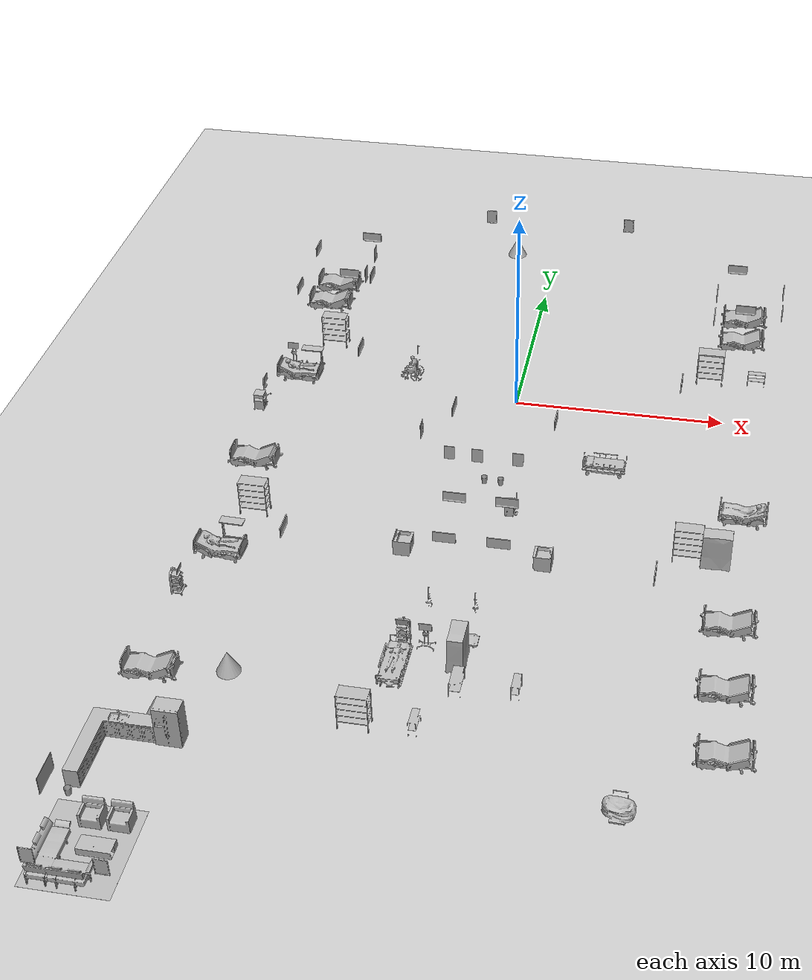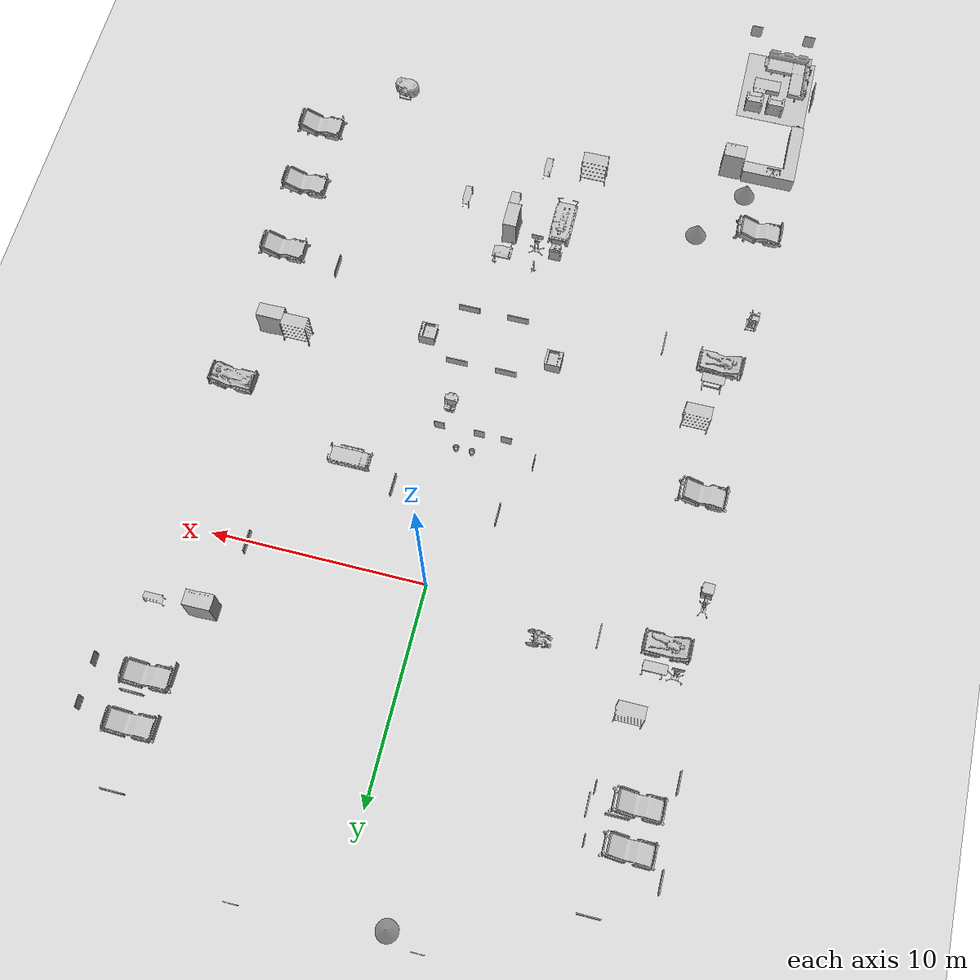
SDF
<sdf version="1.8">
 <world name="hospital_original">
  <gravity>0 0 -9.8</gravity>
  <physics name="default_physics" type="ode">
   <max_step_size>0.001</max_step_size>
   <real_time_factor>1</real_time_factor>
  </physics>
  <scene><ambient>0.6 0.6 0.6 1</ambient><background>0.4 0.4 0.4 1</background><shadows>false</shadows></scene>
  <plugin filename="gz-sim-physics-system" name="gz::sim::systems::Physics"/>
  <plugin filename="gz-sim-user-commands-system" name="gz::sim::systems::UserCommands"/>
  <plugin filename="gz-sim-scene-broadcaster-system" name="gz::sim::systems::SceneBroadcaster"/>
  <plugin filename="gz-sim-sensors-system" name="gz::sim::systems::Sensors">
   <render_engine>ogre2</render_engine>
  </plugin>
  <plugin filename="gz-sim-imu-system" name="gz::sim::systems::Imu"/>
  <plugin filename="gz-sim-contact-system" name="gz::sim::systems::Contact"/>
  <light type="directional" name="sun">
   <pose>0 0 10 0 0 0</pose>
   <diffuse>0.8 0.8 0.8 1</diffuse>
   <specular>0.2 0.2 0.2 1</specular>
   <attenuation>
    <range>1000</range>
    <constant>0.9</constant>
    <linear>0.01</linear>
    <quadratic>0.001</quadratic>
   </attenuation>
   <direction>-0.5 0.1 -0.9</direction>
  </light>
  <model name="ground_plane">
   <static>true</static>
   <link name="link">
    <collision name="collision">
     <geometry><plane><normal>0 0 1</normal><size>100 100</size></plane></geometry>
    </collision>
    <visual name="visual">
     <geometry><plane><normal>0 0 1</normal><size>100 100</size></plane></geometry>
     <material><ambient>0.8 0.8 0.8 1</ambient><diffuse>0.8 0.8 0.8 1</diffuse></material>
    </visual>
   </link>
  </model>
  <include>
   <uri>model://CGMClassic</uri>
   <static>true</static>
   <name>CGMClassic_1</name>
   <pose>11.1777 -18.4129 0 0 0 -3.13719</pose>
  </include>
  <include>
   <uri>model://StorageRack</uri>
   <static>true</static>
   <name>StorageRack_1</name>
   <pose>9.07005 -10.3582 0 0 0 0</pose>
  </include>
  <include>
   <uri>model://CGMClassic</uri>
   <static>true</static>
   <name>CGMClassic_2</name>
   <pose>11.1179 -14.6493 0 0 0 -3.13599</pose>
  </include>
  <include>
   <uri>model://PatientWheelChair</uri>
   <static>true</static>
   <name>PatientWheelChair_1</name>
   <pose>-5.46091 1.23577 0 0 0 -1.54828</pose>
  </include>
  <include>
   <uri>model://TrolleyBed</uri>
   <static>true</static>
   <name>TrolleyBed_1</name>
   <pose>4.85934 -4.87229 0 0 0 0</pose>
  </include>
  <include>
   <uri>model://SurgicalTrolley</uri>
   <static>true</static>
   <name>SurgicalTrolley_1</name>
   <pose>11.4301 3.56328 0 0 -0 0</pose>
  </include>
  <include>
   <uri>model://CGMClassic</uri>
   <static>true</static>
   <name>CGMClassic_3</name>
   <pose>-11.2304 -21.1134 0 0 0 -3.11834</pose>
  </include>
  <include>
   <uri>model://aws_robomaker_residential_CoffeeTable_01</uri>
   <static>true</static>
   <name>aws_robomaker_residential_CoffeeTable_01_1</name>
   <pose>-10.2383 -29.9144 0 0 -0 0</pose>
  </include>
  <include>
   <uri>model://aws_robomaker_residential_Sofa_01</uri>
   <static>true</static>
   <name>aws_robomaker_residential_Sofa_01_1</name>
   <pose>-11.077 -30.5544 -1e-05 2.6e-05 -3e-06 1.56984</pose>
  </include>
  <include>
   <uri>model://aws_robomaker_residential_TV_02</uri>
   <static>true</static>
   <name>aws_robomaker_residential_TV_02_1</name>
   <pose>-12.4122 -28.4594 1.53211 0 -0 3.13999</pose>
  </include>
  <include>
   <uri>model://aws_robomaker_residential_KitchenCabinet_01</uri>
   <static>true</static>
   <name>aws_robomaker_residential_KitchenCabinet_01_1</name>
   <pose>-11.1379 -25.6941 0 0 -0 0</pose>
  </include>
  <include>
   <uri>model://aws_robomaker_residential_Refrigerator_01</uri>
   <static>true</static>
   <name>aws_robomaker_residential_Refrigerator_01_1</name>
   <pose>-9.28238 -24.5015 0 0 -0 0</pose>
  </include>
  <include>
   <uri>model://aws_robomaker_residential_SofaB_01</uri>
   <static>true</static>
   <name>aws_robomaker_residential_SofaB_01_1</name>
   <pose>-10.8238 -28.6662 -5e-06 -1.3e-05 -2e-06 -1.56116</pose>
  </include>
  <include>
   <uri>model://aws_robomaker_residential_SofaB_01</uri>
   <static>true</static>
   <name>aws_robomaker_residential_SofaB_01_2</name>
   <pose>-9.73697 -28.6538 -3e-06 1.3e-05 -4e-06 -1.56077</pose>
  </include>
  <include>
   <uri>model://aws_robomaker_residential_PortraitA_01</uri>
   <static>true</static>
   <name>aws_robomaker_residential_PortraitA_01_1</name>
   <pose>1.14738 -6.92303 1.41115 0 -0 0</pose>
  </include>
  <include>
   <uri>model://aws_robomaker_residential_PortraitD_02</uri>
   <static>true</static>
   <name>aws_robomaker_residential_PortraitD_02_1</name>
   <pose>2.40772 -3.61975 1.54508 0 0 -1.57619</pose>
  </include>
  <include>
   <uri>model://MopCart3</uri>
   <static>true</static>
   <name>MopCart3_1</name>
   <pose>1.07736 -8.59036 -6.7e-05 0 1e-06 0</pose>
  </include>
  <include>
   <uri>model://aws_robomaker_residential_PortraitA_01</uri>
   <static>true</static>
   <name>aws_robomaker_residential_PortraitA_01_2</name>
   <pose>-0.706092 -6.93108 1.41115 0 -0 0</pose>
  </include>
  <include>
   <uri>model://aws_robomaker_residential_PortraitA_01</uri>
   <static>true</static>
   <name>aws_robomaker_residential_PortraitA_01_3</name>
   <pose>-1.97245 -6.9216 1.41115 0 -0 0</pose>
  </include>
  <include>
   <uri>model://aws_robomaker_residential_PortraitD_02</uri>
   <static>true</static>
   <name>aws_robomaker_residential_PortraitD_02_2</name>
   <pose>-2.43341 -3.38621 1.54508 0 -0 1.57083</pose>
  </include>
  <include>
   <uri>model://ElderLadyPatient</uri>
   <static>true</static>
   <name>ElderLadyPatient_1</name>
   <pose>-10.9972 0.231354 0.001654 0 -0 0</pose>
  </include>
  <include>
   <uri>model://ElderLadyPatient</uri>
   <static>true</static>
   <name>ElderLadyPatient_2</name>
   <pose>-10.8133 -13.5925 0.001657 0 -2e-06 -0.025052</pose>
  </include>
  <include>
   <uri>model://CGMClassic</uri>
   <static>true</static>
   <name>CGMClassic_4</name>
   <pose>-11.0878 -7.00992 0 0 -0 3.1351</pose>
  </include>
  <include>
   <uri>model://aws_robomaker_residential_Trash_01</uri>
   <static>true</static>
   <name>aws_robomaker_residential_Trash_01_1</name>
   <pose>0.316178 -6.58235 0.000903 0 -2e-06 0</pose>
  </include>
  <include>
   <uri>model://aws_robomaker_residential_Trash_01</uri>
   <static>true</static>
   <name>aws_robomaker_residential_Trash_01_2</name>
   <pose>-0.436645 -6.57758 0.000903 -1e-06 -1e-06 0</pose>
  </include>
  <include>
   <uri>model://aws_robomaker_residential_Trash_01</uri>
   <static>true</static>
   <name>aws_robomaker_residential_Trash_01_3</name>
   <pose>-12.1773 -27.6293 0.000894 -1e-06 -1e-06 0</pose>
  </include>
  <include>
   <uri>model://aws_robomaker_residential_PortraitE_01</uri>
   <static>true</static>
   <name>aws_robomaker_residential_PortraitE_01_1</name>
   <pose>-9.06141 -31.9238 1.38136 0 -0 0</pose>
  </include>
  <include>
   <uri>model://aws_robomaker_residential_PortraitE_01</uri>
   <static>true</static>
   <name>aws_robomaker_residential_PortraitE_01_2</name>
   <pose>-11.7398 -31.9011 1.38136 0 -0 0</pose>
  </include>
  <include>
   <uri>model://InstrumentCart1</uri>
   <static>true</static>
   <name>InstrumentCart1_1</name>
   <pose>-11.8071 -16.1825 0 0 -0 1.56702</pose>
  </include>
  <include>
   <uri>model://InstrumentCart2</uri>
   <static>true</static>
   <name>InstrumentCart2_1</name>
   <pose>-12.0906 -1.87329 0.051875 0 -0 1.57773</pose>
  </include>
  <include>
   <uri>model://InstrumentCart2</uri>
   <static>true</static>
   <name>InstrumentCart2_2</name>
   <pose>-11.5231 1.34237 0 0 -0 0</pose>
  </include>
  <include>
   <uri>model://aws_robomaker_residential_Carpet_01</uri>
   <static>true</static>
   <name>aws_robomaker_residential_Carpet_01_1</name>
   <pose>-10.7338 -29.9243 0 0 -0 0</pose>
  </include>
  <include>
   <uri>model://CGMClassic</uri>
   <static>true</static>
   <name>CGMClassic_5</name>
   <pose>-11.0106 8.9505 -0.008203 -0.035019 -0.000392 3.13388</pose>
  </include>
  <include>
   <uri>model://CGMClassic</uri>
   <static>true</static>
   <name>CGMClassic_6</name>
   <pose>-11.025 7.10335 0 -0.035021 1.8e-05 -3.13762</pose>
  </include>
  <include>
   <uri>model://BedTable</uri>
   <static>true</static>
   <name>BedTable_1</name>
   <pose>-10.4759 1.39442 0.001184 0 -3e-06 0</pose>
  </include>
  <include>
   <uri>model://BedTable</uri>
   <static>true</static>
   <name>BedTable_2</name>
   <pose>-10.5874 -12.5084 0.001189 0 -0 3.11588</pose>
  </include>
  <include>
   <uri>model://BedsideTable</uri>
   <static>true</static>
   <name>BedsideTable_1</name>
   <pose>-12.1499 -2.63111 0.00018 1e-06 -0 -0.00878</pose>
  </include>
  <include>
   <uri>model://TrolleyBedPatient</uri>
   <static>true</static>
   <name>TrolleyBedPatient_1</name>
   <pose>-1.83202 -19.2612 0 0 -0 0</pose>
  </include>
  <include>
   <uri>model://Shower</uri>
   <static>true</static>
   <name>Shower_1</name>
   <pose>-1.07422 -16.1332 0 0 -0 0</pose>
  </include>
  <include>
   <uri>model://Shower</uri>
   <static>true</static>
   <name>Shower_2</name>
   <pose>0.853327 -16.1492 0 0 -0 0</pose>
  </include>
  <include>
   <uri>model://SurgicalTrolley</uri>
   <static>true</static>
   <name>SurgicalTrolley_2</name>
   <pose>-0.411421 -22.2085 0 0 0 -1.58175</pose>
  </include>
  <include>
   <uri>model://SurgicalTrolley</uri>
   <static>true</static>
   <name>SurgicalTrolley_3</name>
   <pose>3.11747 -19.6565 0 0 -0 1.57031</pose>
  </include>
  <include>
   <uri>model://SurgicalTrolleyMed</uri>
   <static>true</static>
   <name>SurgicalTrolleyMed_1</name>
   <pose>0.770804 -19.7749 0 0 0 -1.56798</pose>
  </include>
  <include>
   <uri>model://InstrumentCart1</uri>
   <static>true</static>
   <name>InstrumentCart1_2</name>
   <pose>-11.8071 -16.1825 0 0 -0 1.56702</pose>
  </include>
  <include>
   <uri>model://InstrumentCart2</uri>
   <static>true</static>
   <name>InstrumentCart2_3</name>
   <pose>-0.869537 -17.7436 0 0 0 -0.002595</pose>
  </include>
  <include>
   <uri>model://StorageRackCovered</uri>
   <static>true</static>
   <name>StorageRackCovered_1</name>
   <pose>0.546476 -18.3985 -0 0 -0 1.56584</pose>
  </include>
  <include>
   <uri>model://StorageRack</uri>
   <static>true</static>
   <name>StorageRack_2</name>
   <pose>-2.69866 -22.4178 -8e-06 0 4e-06 0</pose>
  </include>
  <include>
   <uri>model://KitchenSink</uri>
   <static>true</static>
   <name>KitchenSink_1</name>
   <pose>3.06236 -11.8809 -0.001614 0 -0 3.1391</pose>
  </include>
  <include>
   <uri>model://KitchenSink</uri>
   <static>true</static>
   <name>KitchenSink_2</name>
   <pose>-3.09305 -11.8988 -0.001609 0 -0 0</pose>
  </include>
  <include>
   <uri>model://aws_robomaker_residential_PortraitD_01</uri>
   <static>true</static>
   <name>aws_robomaker_residential_PortraitD_01_1</name>
   <pose>-1.14723 -10.143 1.57344 0 -0 0</pose>
  </include>
  <include>
   <uri>model://aws_robomaker_residential_PortraitD_01</uri>
   <static>true</static>
   <name>aws_robomaker_residential_PortraitD_01_2</name>
   <pose>1.16956 -10.1327 1.57344 0 -0 0</pose>
  </include>
  <include>
   <uri>model://aws_robomaker_residential_PortraitD_01</uri>
   <static>true</static>
   <name>aws_robomaker_residential_PortraitD_01_3</name>
   <pose>1.2703 -12.9084 1.57344 0 0 -3.14134</pose>
  </include>
  <include>
   <uri>model://aws_robomaker_residential_PortraitD_01</uri>
   <static>true</static>
   <name>aws_robomaker_residential_PortraitD_01_4</name>
   <pose>-1.06108 -12.9155 1.57344 0 0 -3.14134</pose>
  </include>
  <include>
   <uri>model://aws_robomaker_residential_PortraitD_02</uri>
   <static>true</static>
   <name>aws_robomaker_residential_PortraitD_02_3</name>
   <pose>7.89294 -13.6155 1.54508 0 0 -1.57619</pose>
  </include>
  <include>
   <uri>model://aws_robomaker_residential_PortraitD_02</uri>
   <static>true</static>
   <name>aws_robomaker_residential_PortraitD_02_4</name>
   <pose>7.88791 0.445446 1.54508 0 0 -1.57619</pose>
  </include>
  <include>
   <uri>model://aws_robomaker_residential_PortraitD_02</uri>
   <static>true</static>
   <name>aws_robomaker_residential_PortraitD_02_5</name>
   <pose>-7.92095 0.84255 1.54508 0 -0 1.57083</pose>
  </include>
  <include>
   <uri>model://aws_robomaker_residential_PortraitD_02</uri>
   <static>true</static>
   <name>aws_robomaker_residential_PortraitD_02_6</name>
   <pose>-7.90937 -13.3417 1.54508 0 -0 1.57083</pose>
  </include>
  <include>
   <uri>model://aws_robomaker_residential_PortraitD_02</uri>
   <static>true</static>
   <name>aws_robomaker_residential_PortraitD_02_7</name>
   <pose>-12.3841 6.01232 1.54508 0 -0 1.57083</pose>
  </include>
  <include>
   <uri>model://aws_robomaker_residential_PortraitD_02</uri>
   <static>true</static>
   <name>aws_robomaker_residential_PortraitD_02_8</name>
   <pose>-12.4276 9.98828 1.54508 0 -0 1.57083</pose>
  </include>
  <include>
   <uri>model://aws_robomaker_residential_PortraitE_02</uri>
   <static>true</static>
   <name>aws_robomaker_residential_PortraitE_02_1</name>
   <pose>-9.08927 9.19494 1.84129 0 0 -1.5625</pose>
  </include>
  <include>
   <uri>model://aws_robomaker_residential_PortraitD_02</uri>
   <static>true</static>
   <name>aws_robomaker_residential_PortraitD_02_9</name>
   <pose>-8.94468 7.73571 1.54508 0 -0 1.57083</pose>
  </include>
  <include>
   <uri>model://aws_robomaker_residential_PortraitE_02</uri>
   <static>true</static>
   <name>aws_robomaker_residential_PortraitE_02_2</name>
   <pose>-9.08305 7.04089 1.84129 0 0 -1.5625</pose>
  </include>
  <include>
   <uri>model://aws_robomaker_residential_PortraitD_01</uri>
   <static>true</static>
   <name>aws_robomaker_residential_PortraitD_01_5</name>
   <pose>-9.9148 11.9172 1.40573 0 -0 0</pose>
  </include>
  <include>
   <uri>model://aws_robomaker_residential_PortraitD_01</uri>
   <static>true</static>
   <name>aws_robomaker_residential_PortraitD_01_6</name>
   <pose>-10.2134 7.89752 1.40573 0 -0 0</pose>
  </include>
  <include>
   <uri>model://CGMClassic</uri>
   <static>true</static>
   <name>CGMClassic_7</name>
   <pose>10.6166 9.06291 -0.008203 -0.03501 0.000885 -3.11285</pose>
  </include>
  <include>
   <uri>model://CGMClassic</uri>
   <static>true</static>
   <name>CGMClassic_8</name>
   <pose>10.6006 6.90956 -0.008203 -0.035003 0.001133 -3.10576</pose>
  </include>
  <include>
   <uri>model://aws_robomaker_residential_PortraitD_02</uri>
   <static>true</static>
   <name>aws_robomaker_residential_PortraitD_02_10</name>
   <pose>9.06517 6.78742 1.54508 0 -0 1.57083</pose>
  </include>
  <include>
   <uri>model://aws_robomaker_residential_PortraitD_02</uri>
   <static>true</static>
   <name>aws_robomaker_residential_PortraitD_02_11</name>
   <pose>9.06517 9.05858 1.54508 0 -0 1.57083</pose>
  </include>
  <include>
   <uri>model://aws_robomaker_residential_PortraitE_02</uri>
   <static>true</static>
   <name>aws_robomaker_residential_PortraitE_02_3</name>
   <pose>12.3972 6.98849 1.84129 0 0 -1.5625</pose>
  </include>
  <include>
   <uri>model://aws_robomaker_residential_PortraitE_02</uri>
   <static>true</static>
   <name>aws_robomaker_residential_PortraitE_02_4</name>
   <pose>12.3972 8.87466 1.84129 0 0 -1.5625</pose>
  </include>
  <include>
   <uri>model://aws_robomaker_residential_PortraitE_02</uri>
   <static>true</static>
   <name>aws_robomaker_residential_PortraitE_02_5</name>
   <pose>-3.4385 -6.00525 1.84129 0 -0 1.56777</pose>
  </include>
  <include>
   <uri>model://aws_robomaker_residential_PortraitD_01</uri>
   <static>true</static>
   <name>aws_robomaker_residential_PortraitD_01_7</name>
   <pose>10.596 7.88308 1.40573 0 -0 0</pose>
  </include>
  <include>
   <uri>model://aws_robomaker_residential_PortraitD_01</uri>
   <static>true</static>
   <name>aws_robomaker_residential_PortraitD_01_8</name>
   <pose>9.98896 11.914 1.40573 0 -0 0</pose>
  </include>
  <include>
   <uri>model://ParkingTrolleyMin</uri>
   <static>true</static>
   <name>ParkingTrolleyMin_1</name>
   <pose>0.715846 -17.1496 -0.000121 -1e-06 -0 0</pose>
  </include>
  <include>
   <uri>model://MalePatientBed</uri>
   <static>true</static>
   <name>MalePatientBed_1</name>
   <pose>11.3771 -7.38891 0.001658 -1e-06 1e-06 3.11598</pose>
  </include>
  <include>
   <uri>model://CGMClassic</uri>
   <static>true</static>
   <name>CGMClassic_9</name>
   <pose>11.3613 -21.8867 0 0 0 -3.12292</pose>
  </include>
  <include>
   <uri>model://StorageRackCoverOpen</uri>
   <static>true</static>
   <name>StorageRackCoverOpen_1</name>
   <pose>9.15016 3.44263 -9e-06 1e-06 2e-06 0</pose>
  </include>
  <include>
   <uri>model://StorageRack</uri>
   <static>true</static>
   <name>StorageRack_3</name>
   <pose>-10.1178 -10.4694 -0 0 -0 0</pose>
  </include>
  <include>
   <uri>model://StorageRack</uri>
   <static>true</static>
   <name>StorageRack_4</name>
   <pose>-9.91557 3.5644 -9e-06 1e-06 1e-06 -0.000273</pose>
  </include>
  <include>
   <uri>model://StorageRackCovered</uri>
   <static>true</static>
   <name>StorageRackCovered_2</name>
   <pose>10.294 -10.577 -7e-06 3e-06 -0 3.13389</pose>
  </include>
  <include>
   <uri>model://InstrumentCart1</uri>
   <static>true</static>
   <name>InstrumentCart1_3</name>
   <pose>-1.83539 -17.5879 0 0 -0 0</pose>
  </include>
  <include>
   <uri>model://ParkingTrolleyMax</uri>
   <static>true</static>
   <name>ParkingTrolleyMax_1</name>
   <pose>7.71054 -25.1326 -0.000121 1e-06 -0 -1.59536</pose>
  </include>
  <include>
   <uri>model://aws_robomaker_residential_PortraitE_02</uri>
   <static>true</static>
   <name>aws_robomaker_residential_PortraitE_02_6</name>
   <pose>-3.74211 14.8725 1.54379 0 -0 0</pose>
  </include>
  <include>
   <uri>model://aws_robomaker_residential_PortraitE_01</uri>
   <static>true</static>
   <name>aws_robomaker_residential_PortraitE_01_3</name>
   <pose>3.85701 14.8779 1.69742 0 -0 0</pose>
  </include>
  <model name="goal_cone_01">
   <pose>-10.243 -23.225 0.5 5.254459108606895e-17 -7.713284103729037e-10 -1.7344</pose>
   <static>false</static>
   <link name="goal_cone_link">
    <inertial>
     <mass>1.0</mass>
     <inertia><ixx>0.075</ixx><ixy>0</ixy><ixz>0</ixz><iyy>0.075</iyy><iyz>0</iyz><izz>0.075</izz></inertia>
    </inertial>
    <collision name="goal_cone_collision">
     <geometry><cone><radius>0.5</radius><length>1.0</length></cone></geometry>
    </collision>
    <visual name="goal_cone_visual">
     <geometry><cone><radius>0.5</radius><length>1.0</length></cone></geometry>
     <material>
      <ambient>0.699999988 0.699999988 0.699999988 1.0</ambient>
      <diffuse>0.699999988 0.699999988 0.699999988 1.0</diffuse>
      <specular>1 1 1 1</specular>
     </material>
    </visual>
   </link>
  </model>
  <model name="goal_cone_02">
   <pose>-8.309 -20.431 0.5 5.254459108606895e-17 -7.713284103729037e-10 0.5003</pose>
   <static>false</static>
   <link name="goal_cone_link">
    <inertial>
     <mass>1.0</mass>
     <inertia><ixx>0.075</ixx><ixy>0</ixy><ixz>0</ixz><iyy>0.075</iyy><iyz>0</iyz><izz>0.075</izz></inertia>
    </inertial>
    <collision name="goal_cone_collision">
     <geometry><cone><radius>0.5</radius><length>1.0</length></cone></geometry>
    </collision>
    <visual name="goal_cone_visual">
     <geometry><cone><radius>0.5</radius><length>1.0</length></cone></geometry>
     <material>
      <ambient>0.699999988 0.699999988 0.699999988 1.0</ambient>
      <diffuse>0.699999988 0.699999988 0.699999988 1.0</diffuse>
      <specular>1 1 1 1</specular>
     </material>
    </visual>
   </link>
  </model>
  <model name="goal_cone_03">
   <pose>-2.211 14.337 0.5 5.254459108606895e-17 -7.713284103729037e-10 -1.8299</pose>
   <static>false</static>
   <link name="goal_cone_link">
    <inertial>
     <mass>1.0</mass>
     <inertia><ixx>0.075</ixx><ixy>0</ixy><ixz>0</ixz><iyy>0.075</iyy><iyz>0</iyz><izz>0.075</izz></inertia>
    </inertial>
    <collision name="goal_cone_collision">
     <geometry><cone><radius>0.5</radius><length>1.0</length></cone></geometry>
    </collision>
    <visual name="goal_cone_visual">
     <geometry><cone><radius>0.5</radius><length>1.0</length></cone></geometry>
     <material>
      <ambient>0.699999988 0.699999988 0.699999988 1.0</ambient>
      <diffuse>0.699999988 0.699999988 0.699999988 1.0</diffuse>
      <specular>1 1 1 1</specular>
     </material>
    </visual>
   </link>
  </model>
 </world>
</sdf>

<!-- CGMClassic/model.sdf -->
<sdf version="1.6">
  <model name="CGMClassic">
   <static>true</static>
    <link name="body">
      <pose>0 0 0 0 0 0</pose>

      <visual name="visual">
        <geometry>
          <mesh>
            <uri>model://CGMClassic/meshes/CGMClassic.obj</uri>
            <scale>0.01 0.01 0.01</scale>
          </mesh>
        </geometry>
      </visual>

      <collision name="collision">
        <geometry>
          <mesh>
            <uri>model://CGMClassic/meshes/CGMClassic.obj</uri>
            <scale>0.01 0.01 0.01</scale>
          </mesh>
        </geometry>
      </collision>

    </link>
  </model>
</sdf>

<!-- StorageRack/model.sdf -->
<sdf version="1.5">
  <model name="StorageRack">
    <link name="link">
      <pose>0 0 0 0 0 0</pose>

        <visual name="visual">
          <geometry>
            <mesh><uri>model://StorageRack/meshes/StorageRack.obj</uri></mesh>
          </geometry>
        </visual>

        <collision name="collision">
          <geometry>
            <mesh><uri>model://StorageRack/meshes/StorageRack.obj</uri></mesh>
          </geometry>
        </collision>

    </link>
  </model>
</sdf>

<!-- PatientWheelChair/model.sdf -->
<sdf version="1.6">
  <model name="PatientWheelChair">
   <static>true</static>
    <link name="body">
      <pose>0 0 0 0 0 0</pose>

      <visual name="visual">
        <geometry>
          <mesh>
            <uri>model://PatientWheelChair/meshes/PatientWheelChair.obj</uri>
          </mesh>
        </geometry>
      </visual>

      <collision name="collision">
        <geometry>
          <mesh>
            <uri>model://PatientWheelChair/meshes/PatientWheelChair_Col.obj</uri>
          </mesh>
        </geometry>
      </collision>

    </link>
  </model>
</sdf>

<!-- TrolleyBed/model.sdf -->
<sdf version="1.5">
  <model name="TrolleyBed">
    <link name="link">
      <pose>0 0 0 0 0 0</pose>

        <visual name="visual">
          <geometry>
            <mesh><uri>model://TrolleyBed/meshes/TrolleyBed.obj</uri></mesh>
          </geometry>
        </visual>

        <collision name="collision">
          <geometry>
            <mesh><uri>model://TrolleyBed/meshes/TrolleyBed.obj</uri></mesh>
          </geometry>
        </collision>

    </link>
  </model>
</sdf>

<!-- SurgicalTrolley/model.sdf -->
<sdf version="1.6">
  <model name='SurgicalTrolley'>
   <static>true</static>
    <link name="body">
      <pose>0 0 0 0 0 0</pose>

      <visual name="visual">
        <geometry>
          <mesh>
            <uri>model://SurgicalTrolley/meshes/trolley.obj</uri>
          </mesh>
        </geometry>
      </visual>

      <collision name="collision">
        <geometry>
          <mesh>
            <uri>model://SurgicalTrolley/meshes/trolley.obj</uri>
          </mesh>
        </geometry>
      </collision>

    </link>
  </model>
</sdf>

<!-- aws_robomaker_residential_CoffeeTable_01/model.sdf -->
<sdf version="1.6">
  <model name="aws_robomaker_residential_CoffeeTable_01">
    <link name="link">
      <inertial>
        <mass>21.7</mass>

        <inertia>
          <ixx>0.8137499999999998</ixx>
          <ixy>0</ixy>
          <ixz>0</ixz>
          <iyy>2.76675</iyy>
          <iyz>0</iyz>
          <izz>3.254</izz>
        </inertia>

      </inertial>

      <collision name="collision">
        <geometry>
          <mesh>
            <uri>model://aws_robomaker_residential_CoffeeTable_01/meshes/aws_CoffeeTable_01_collision.DAE</uri>
            <scale>1 1 1</scale>
          </mesh>
        </geometry>

        <surface>
          <contact>
            <ode>
              <max_vel>0.01</max_vel>
            </ode>
          </contact>
         </surface>
      </collision>

      <visual name="visual">
	    <geometry>
          <mesh>
            <uri>model://aws_robomaker_residential_CoffeeTable_01/meshes/aws_CoffeeTable_01_visual.DAE</uri>
          </mesh>
        </geometry>
      <meta> <layer> 1 </layer></meta>
</visual>
    </link>
    <static>1</static>
  </model>
</sdf>

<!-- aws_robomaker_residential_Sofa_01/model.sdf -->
<sdf version="1.6">
  <model name="aws_robomaker_residential_Sofa_01">
    <link name="link">

      <inertial>
        <mass>72.5</mass>
      </inertial>

      <collision name="collision">

        <geometry>
          <mesh>
            <uri>model://aws_robomaker_residential_Sofa_01/meshes/aws_Sofa_01_collision.DAE</uri>
            <scale>1 1 1</scale>
          </mesh>
        </geometry>

      </collision>
      <visual name="visual">
	    <geometry>
          <mesh>
            <uri>model://aws_robomaker_residential_Sofa_01/meshes/aws_Sofa_01_visual.DAE</uri>
          </mesh>
        </geometry>
      <meta> <layer> 1 </layer></meta>
</visual>
    </link>
  </model>
</sdf>

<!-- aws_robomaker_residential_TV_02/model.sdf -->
<sdf version="1.6">
  <model name="aws_robomaker_residential_TV_02">
    <link name="link">
      <inertial>
        <mass>1</mass>
      </inertial>
      <collision name="collision">
        <geometry>
          <mesh>
            <uri>model://aws_robomaker_residential_TV_02/meshes/aws_TV_01_collision.DAE</uri>
            <scale>1 1 1</scale>
          </mesh>
        </geometry>
      </collision>
      <visual name="visual">
	    <geometry>
          <mesh>
            <uri>model://aws_robomaker_residential_TV_02/meshes/aws_TV_01_visual.DAE</uri>
          </mesh>
        </geometry>
      <meta> <layer> 2 </layer></meta>
</visual>
    </link>
	<static>1</static>
  </model>
</sdf>

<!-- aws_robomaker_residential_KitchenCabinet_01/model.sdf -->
<sdf version="1.6">
  <model name="aws_robomaker_residential_KitchenCabinet_01">
    <link name="link">
      <inertial>
        <mass>1</mass>
      </inertial>
      <collision name="collision">
        <laser_retro>0</laser_retro>
        <max_contacts>10</max_contacts>
        <geometry>
          <mesh>
            <uri>model://aws_robomaker_residential_KitchenCabinet_01/meshes/aws_KitchenCabinet_01_collision.DAE</uri>
            <scale>1 1 1</scale>
          </mesh>
        </geometry>
      </collision>
      <visual name="visual">
	    <geometry>
          <mesh>
            <uri>model://aws_robomaker_residential_KitchenCabinet_01/meshes/aws_KitchenCabinet_01_visual.DAE</uri>
          </mesh>
        </geometry>
      <meta> <layer> 1 </layer></meta>
</visual>
    </link>

    <static>1</static>
  </model>
</sdf>

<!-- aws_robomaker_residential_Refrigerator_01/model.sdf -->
<sdf version="1.6">
  <model name="aws_robomaker_residential_Refrigerator_01">
    <link name="link">
      <inertial>
        <mass>1</mass>
      </inertial>
      <collision name="collision">
        <geometry>
          <mesh>
            <uri>model://aws_robomaker_residential_Refrigerator_01/meshes/aws_Refrigerator_01_collision.DAE</uri>
            <scale>1 1 1</scale>
          </mesh>
        </geometry>
      </collision>
      <visual name="visual">
	    <geometry>
          <mesh>
            <uri>model://aws_robomaker_residential_Refrigerator_01/meshes/aws_Refrigerator_01_visual.DAE</uri>
          </mesh>
        </geometry>
      <meta> <layer> 1 </layer></meta>
</visual>
    </link>
    <static>1</static>
  </model>
</sdf>

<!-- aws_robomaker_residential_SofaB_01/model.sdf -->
<sdf version="1.6">
  <model name="aws_robomaker_residential_SofaB_01">
    <link name="link">

      <inertial>
        <mass>72.5</mass>
      </inertial>

      <collision name="collision">

        <geometry>
          <mesh>
            <uri>model://aws_robomaker_residential_SofaB_01/meshes/aws_SofaB_01_collision.DAE</uri>
            <scale>1 1 1</scale>
          </mesh>
        </geometry>

      </collision>
      <visual name="visual">
	    <geometry>
          <mesh>
            <uri>model://aws_robomaker_residential_SofaB_01/meshes/aws_SofaB_01_visual.DAE</uri>
          </mesh>
        </geometry>
      <meta> <layer> 1 </layer></meta>
</visual>
    </link>
  </model>
</sdf>

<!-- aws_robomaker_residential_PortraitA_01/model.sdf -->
<sdf version="1.6">
  <model name="aws_robomaker_residential_PortraitA_01">
    <link name="link">
      <inertial>
        <mass>1</mass>
      </inertial>
      <collision name="collision">
        <geometry>
          <mesh>
            <uri>model://aws_robomaker_residential_PortraitA_01/meshes/aws_PortraitA_01_collision.DAE</uri>
            <scale>1 1 1</scale>
          </mesh>
        </geometry>
      </collision>
      <visual name="visual">
	    <geometry>
          <mesh>
            <uri>model://aws_robomaker_residential_PortraitA_01/meshes/aws_PortraitA_01_visual.DAE</uri>
          </mesh>
        </geometry>
      <meta> <layer> 2 </layer></meta>
</visual>
    </link>
	<static>1</static>
  </model>
</sdf>

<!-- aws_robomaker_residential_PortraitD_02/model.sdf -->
<sdf version="1.6">
  <model name="aws_robomaker_residential_PortraitD_02">
    <link name="link">

      <inertial>
        <mass>1.5</mass>
      </inertial>

      <collision name="collision">
        <geometry>
          <mesh>
            <uri>model://aws_robomaker_residential_PortraitD_02/meshes/aws_PortraitD_01_collision.DAE</uri>
            <scale>1 1 1</scale>
          </mesh>
        </geometry>

      </collision>

      <visual name="visual">
	    <geometry>
          <mesh>
            <uri>model://aws_robomaker_residential_PortraitD_02/meshes/aws_PortraitD_01_visual.DAE</uri>
          </mesh>
        </geometry>
      <meta> <layer> 2 </layer></meta>
</visual>
    </link>
	<static>1</static>
  </model>
</sdf>

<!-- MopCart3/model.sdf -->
<sdf version="1.5">
  <model name="MopCart3">
    <link name="link">
      <pose>0 0 0 0 0 0</pose>

        <visual name="visual">
          <geometry>
            <mesh><uri>model://MopCart3/meshes/MopCart3.obj</uri></mesh>
          </geometry>
        </visual>

        <collision name="collision">
          <geometry>
            <mesh><uri>model://MopCart3/meshes/MopCart3.obj</uri></mesh>
          </geometry>
        </collision>

    </link>
  </model>
</sdf>

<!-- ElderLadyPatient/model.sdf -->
<sdf version="1.6">
  <model name='ElderLadyPatient'>
    <link name="body">
      <pose>0 0 0 0 0 0</pose>

      <visual name="visual">
        <geometry>
          <mesh>
            <uri>model://ElderLadyPatient/meshes/ElderFemale.obj</uri>
          </mesh>
        </geometry>
      </visual>

      <collision name="collision">
        <geometry>
          <mesh>
            <uri>model://ElderLadyPatient/meshes/ElderFemale.obj</uri>
          </mesh>
        </geometry>
      </collision>

    </link>
  </model>
</sdf>

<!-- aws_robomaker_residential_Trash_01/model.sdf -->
<sdf version="1.6">
  <model name="aws_robomaker_residential_Trash_01">
    <link name="link">

      <inertial>

        <mass>0.1</mass>
        <inertia>
            <ixy>0</ixy>
            <ixz>0</ixz>
            <iyz>0</iyz>
            <ixx>0.05288</ixx>
            <iyy>0.05288</iyy>
            <izz>0.09132</izz>
          </inertia>
      </inertial>

      <collision name="collision">
        <geometry>
          <mesh>
            <uri>model://aws_robomaker_residential_Trash_01/meshes/aws_Trash_01_collision.DAE</uri>
            <scale>1 1 1</scale>
          </mesh>
        </geometry>

      </collision>

      <visual name="visual">
	    <geometry>
          <mesh>
            <uri>model://aws_robomaker_residential_Trash_01/meshes/aws_Trash_01_visual.DAE</uri>
          </mesh>
        </geometry>
      <meta> <layer> 1 </layer></meta>
</visual>
    </link>
  </model>
</sdf>

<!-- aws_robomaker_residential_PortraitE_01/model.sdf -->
<sdf version="1.6">
  <model name="aws_robomaker_residential_PortraitE_01">
    <link name="link">
      <inertial>
        <mass>1</mass>
      </inertial>
      <collision name="collision">
        <geometry>
          <mesh>
            <uri>model://aws_robomaker_residential_PortraitE_01/meshes/aws_PortraitE_01_collision.DAE</uri>
            <scale>1 1 1</scale>
          </mesh>
        </geometry>
      </collision>
      <visual name="visual">
	    <geometry>
          <mesh>
            <uri>model://aws_robomaker_residential_PortraitE_01/meshes/aws_PortraitE_01_visual.DAE</uri>
          </mesh>
        </geometry>
      <meta> <layer> 2 </layer></meta>
</visual>
    </link>
	<static>1</static>
  </model>
</sdf>

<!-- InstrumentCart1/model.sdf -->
<sdf version="1.6">
  <model name="InstrumentCart1">
   <static>true</static>
    <link name="body">
      <pose>0 0 0 0 0 0</pose>

      <visual name="visual">
        <geometry>
          <mesh>
            <uri>model://InstrumentCart1/meshes/InstrumentCart1.obj</uri>
          </mesh>
        </geometry>
      </visual>

      <collision name="collision">
        <geometry>
          <mesh>
            <uri>model://InstrumentCart1/meshes/InstrumentCart1.obj</uri>
          </mesh>
        </geometry>
      </collision>

    </link>
  </model>
</sdf>

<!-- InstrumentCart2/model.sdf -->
<sdf version="1.6">
  <model name="InstrumentCart2">
   <static>true</static>
    <link name="body">
      <pose>0 0 0 0 0 0</pose>

      <visual name="visual">
        <geometry>
          <mesh>
            <uri>model://InstrumentCart2/meshes/InstrumentCart2.obj</uri>
          </mesh>
        </geometry>
      </visual>

      <collision name="collision">
        <geometry>
          <mesh>
            <uri>model://InstrumentCart2/meshes/InstrumentCart2.obj</uri>
          </mesh>
        </geometry>
      </collision>

    </link>
  </model>
</sdf>

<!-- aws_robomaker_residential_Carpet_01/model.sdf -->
<sdf version="1.6">
  <model name="aws_robomaker_residential_Carpet_01">
    <link name="link">
      <inertial>
        <mass>8.1</mass>
      </inertial>

      <collision name="collision">

        <geometry>
          <mesh>
            <uri>model://aws_robomaker_residential_Carpet_01/meshes/aws_Carpet_01_collision.DAE</uri>
            <scale>1 1 0.95</scale>
          </mesh>
        </geometry>

        <surface>
          <friction>
            <ode>
              <mu>100</mu>
              <mu2>50</mu2>
            </ode>
          </friction>
          <contact>
            <ode>
            </ode>
          </contact>
        </surface>

        <pose>0 0 -0.01 0 0 0 </pose>
      </collision>

      <visual name="visual">
	    <geometry>
          <mesh>
            <uri>model://aws_robomaker_residential_Carpet_01/meshes/aws_Carpet_01_visual.DAE</uri>
          </mesh>
        </geometry>
      <meta> <layer> 1 </layer></meta>
</visual>
    </link>

    <static>1</static>

  </model>
</sdf>

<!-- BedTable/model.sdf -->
<sdf version="1.6">
  <model name='BedTable'>
    <link name="body">
      <pose>0 0 0 0 0 0</pose>

      <visual name="visual">
        <geometry>
          <mesh>
            <uri>model://BedTable/meshes/BedTable.obj</uri>
          </mesh>
        </geometry>
      </visual>

      <collision name="collision">
        <geometry>
          <mesh>
            <uri>model://BedTable/meshes/BedTable_Col.obj</uri>
          </mesh>
        </geometry>
      </collision>

    </link>
  </model>
</sdf>

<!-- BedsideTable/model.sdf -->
<sdf version="1.6">
  <model name='BedsideTable'>
    <link name="body">
      <pose>0 0 0 0 0 -1.5708</pose>

      <visual name="visual">
        <geometry>
          <mesh>
            <uri>model://BedsideTable/meshes/BedsideTable.obj</uri>
          </mesh>
        </geometry>
      </visual>

      <collision name="collision">
        <geometry>
          <mesh>
            <uri>model://BedsideTable/meshes/BedsideTable_Col.obj</uri>
          </mesh>
        </geometry>
      </collision>

    </link>
  </model>
</sdf>

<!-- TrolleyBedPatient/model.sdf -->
<sdf version="1.6">
  <model name="TrolleyBedPatient">
   <static>true</static>
    <link name="body">
      <pose>0 0 0 0 0 0</pose>

      <visual name="visual">
        <geometry>
          <mesh>
            <uri>model://TrolleyBedPatient/meshes/TrolleyBedPatient.obj</uri>
          </mesh>
        </geometry>
      </visual>

      <collision name="collision">
        <geometry>
          <mesh>
            <uri>model://TrolleyBedPatient/meshes/TrolleyBedPatient.obj</uri>
          </mesh>
        </geometry>
      </collision>

    </link>
  </model>
</sdf>

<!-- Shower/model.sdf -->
<sdf version="1.6">
  <model name='Shower'>
<static>true</static>
    <link name="body">
      <pose>0 0 0 0 0 0</pose>

      <visual name="visual">
        <geometry>
          <mesh>
            <uri>model://Shower/meshes/Shower.obj</uri>
            <scale>1 1 1</scale>
          </mesh>
        </geometry>
      </visual>

      <collision name="collision">
        <geometry>
          <mesh>
            <uri>model://Shower/meshes/Shower.obj</uri>
            <scale>1 1 1</scale>
          </mesh>
        </geometry>
      </collision>

    </link>
  </model>
</sdf>

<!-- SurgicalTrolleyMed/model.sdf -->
<sdf version="1.6">
  <model name="SurgicalTrolleyMed">
   <static>true</static>
    <link name="body">
      <pose>0 0 0 0 0 0</pose>

      <visual name="visual">
        <geometry>
          <mesh>
            <uri>model://SurgicalTrolleyMed/meshes/SurgicalTrolleyMed.obj</uri>
          </mesh>
        </geometry>
      </visual>

      <collision name="collision">
        <geometry>
          <mesh>
            <uri>model://SurgicalTrolleyMed/meshes/SurgicalTrolleyMed_Col.obj</uri>
          </mesh>
        </geometry>
      </collision>

    </link>
  </model>
</sdf>

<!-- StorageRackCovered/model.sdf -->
<sdf version="1.5">
  <model name="StorageRackCovered">
    <link name="link">
      <pose>0 0 0 0 0 0</pose>

        <visual name="visual">
          <geometry>
            <mesh><uri>model://StorageRackCovered/meshes/StorageRackCovered.obj</uri></mesh>
          </geometry>
        </visual>

        <collision name="collision">
          <geometry>
            <mesh><uri>model://StorageRackCovered/meshes/StorageRackCovered.obj</uri></mesh>
          </geometry>
        </collision>

    </link>
  </model>
</sdf>

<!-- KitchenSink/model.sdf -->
<sdf version="1.5">
  <model name="KitchenSink">
    <link name="link">
      <pose>0 0 0 0 0 0</pose>

        <visual name="visual">
          <geometry>
            <mesh><uri>model://KitchenSink/meshes/kitchenSink.obj</uri></mesh>
          </geometry>
        </visual>

        <collision name="collision">
          <geometry>
            <mesh><uri>model://KitchenSink/meshes/kitchenSink.obj</uri></mesh>
          </geometry>
        </collision>

    </link>
  </model>
</sdf>

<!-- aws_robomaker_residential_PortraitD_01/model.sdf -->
<sdf version="1.6">
  <model name="aws_robomaker_residential_PortraitD_01">
    <link name="link">

      <inertial>
        <mass>1.5</mass>
      </inertial>

      <collision name="collision">
        <geometry>
          <mesh>
            <uri>model://aws_robomaker_residential_PortraitD_01/meshes/aws_PortraitD_01_collision.DAE</uri>
            <scale>1 1 1</scale>
          </mesh>
        </geometry>

      </collision>

      <visual name="visual">
	    <geometry>
          <mesh>
            <uri>model://aws_robomaker_residential_PortraitD_01/meshes/aws_PortraitD_01_visual.DAE</uri>
          </mesh>
        </geometry>
      <meta> <layer> 2 </layer></meta>
</visual>
    </link>
	<static>1</static>
  </model>
</sdf>

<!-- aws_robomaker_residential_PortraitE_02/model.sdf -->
<sdf version="1.6">
  <model name="aws_robomaker_residential_PortraitE_02">
    <link name="link">
      <inertial>
        <mass>1</mass>
      </inertial>
      <collision name="collision">
        <geometry>
          <mesh>
            <uri>model://aws_robomaker_residential_PortraitE_02/meshes/aws_PortraitE_01_collision.DAE</uri>
            <scale>1 1 1</scale>
          </mesh>
        </geometry>
      </collision>
      <visual name="visual">
	    <geometry>
          <mesh>
            <uri>model://aws_robomaker_residential_PortraitE_02/meshes/aws_PortraitE_01_visual.DAE</uri>
          </mesh>
        </geometry>
      <meta> <layer> 2 </layer></meta>
</visual>
    </link>
	<static>1</static>
  </model>
</sdf>

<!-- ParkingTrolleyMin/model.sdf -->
<sdf version="1.6">
  <model name='ParkingTrolleyMin'>
    <link name="body">
      <pose>0 0 0 0 0 0</pose>

        <visual name="visual">
          <pose>0 0 0 0 0 0</pose>
          <geometry>
            <mesh><uri>model://ParkingTrolleyMin/meshes/trolleymin.obj</uri></mesh>
          </geometry>
        </visual>

        <collision name="collision">
          <pose>0 0 0 0 0 0</pose>
          <geometry>
            <mesh><uri>model://ParkingTrolleyMin/meshes/trolleymin.obj</uri></mesh>
          </geometry>
        </collision>

    </link>
  </model>
</sdf>

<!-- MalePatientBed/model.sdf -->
<sdf version="1.5">
  <model name="MalePatientBed">
    <link name="link">
      <pose>0 0 0 0 0 0</pose>

        <visual name="visual">
          <geometry>
            <mesh><uri>model://MalePatientBed/meshes/MalePatientBed.obj</uri></mesh>
          </geometry>
        </visual>

        <collision name="collision">
          <geometry>
            <mesh><uri>model://MalePatientBed/meshes/MalePatientBed.obj</uri></mesh>
          </geometry>
        </collision>

    </link>
  </model>
</sdf>

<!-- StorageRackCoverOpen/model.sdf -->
<sdf version="1.5">
  <model name="StorageRackCoverOpen">
    <link name="link">
      <pose>0 0 0 0 0 0</pose>

        <visual name="visual">
          <geometry>
            <mesh><uri>model://StorageRackCoverOpen/meshes/StorageRackCoverOpen.obj</uri></mesh>
          </geometry>
        </visual>

        <collision name="collision">
          <geometry>
            <mesh><uri>model://StorageRackCoverOpen/meshes/StorageRackCoverOpen.obj</uri></mesh>
          </geometry>
        </collision>

    </link>
  </model>
</sdf>

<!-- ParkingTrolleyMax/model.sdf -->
<sdf version="1.6">
  <model name='ParkingTrolleyMax'>
    <link name="body">
      <pose>0 0 0 0 0 0</pose>

        <visual name="visual">
          <pose>0 0 0 0 0 0</pose>
          <geometry>
            <mesh><uri>model://ParkingTrolleyMax/meshes/ParkingTrolleyMax.obj</uri></mesh>
          </geometry>
        </visual>

        <collision name="collision">
          <pose>0 0 0 0 0 0</pose>
          <geometry>
            <mesh><uri>model://ParkingTrolleyMax/meshes/ParkingTrolleyMax.obj</uri></mesh>
          </geometry>
        </collision>

    </link>
  </model>
</sdf>
